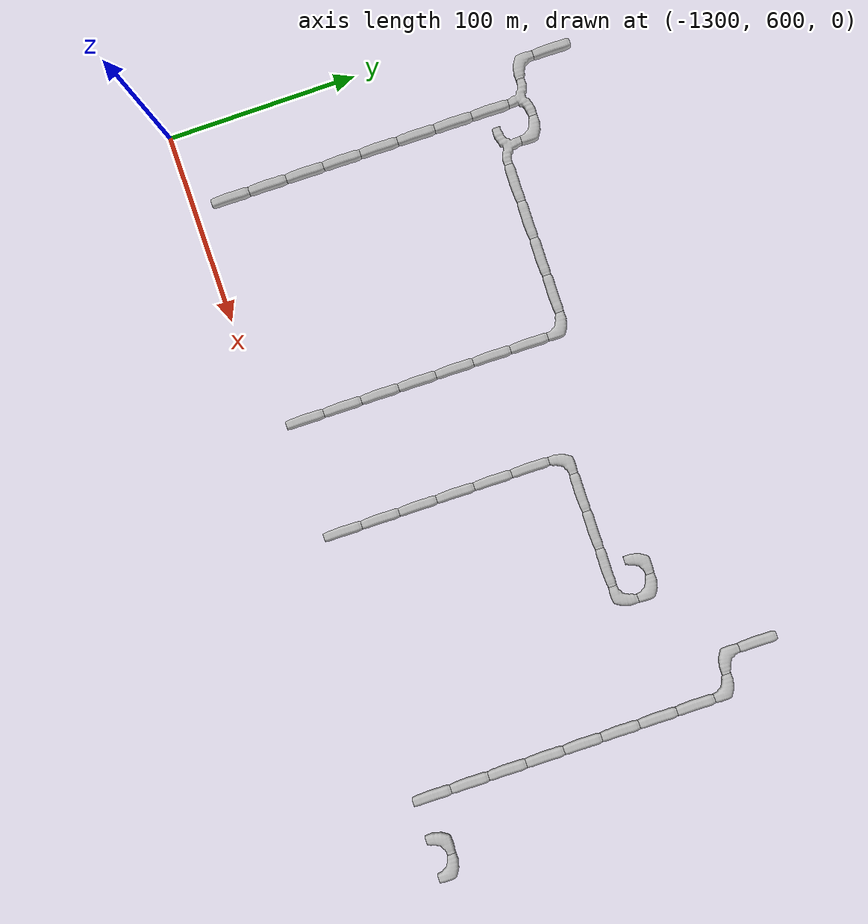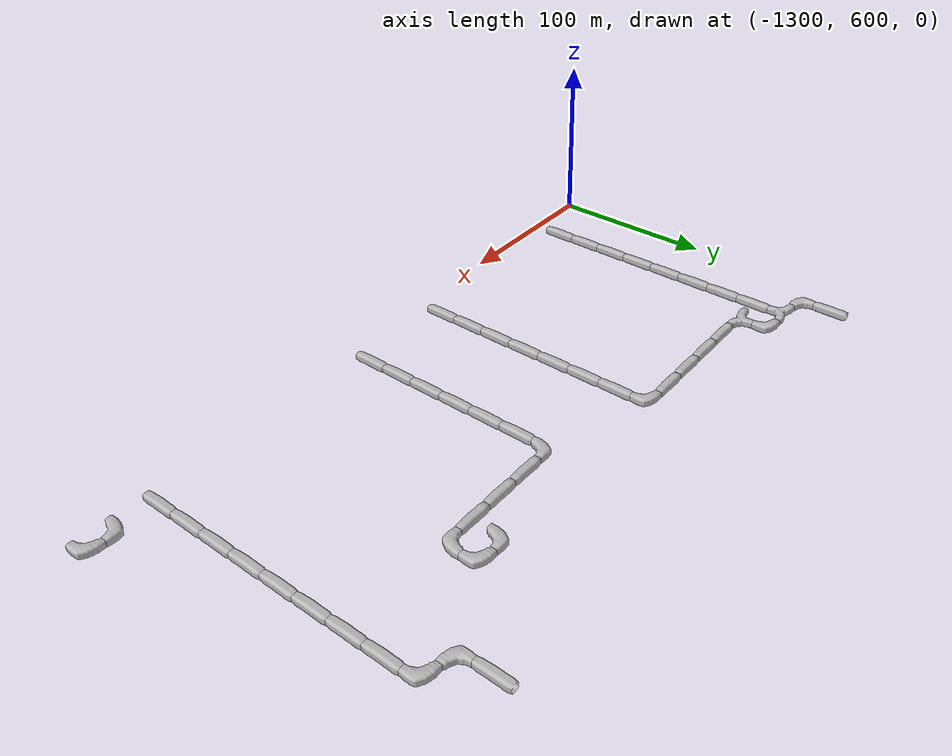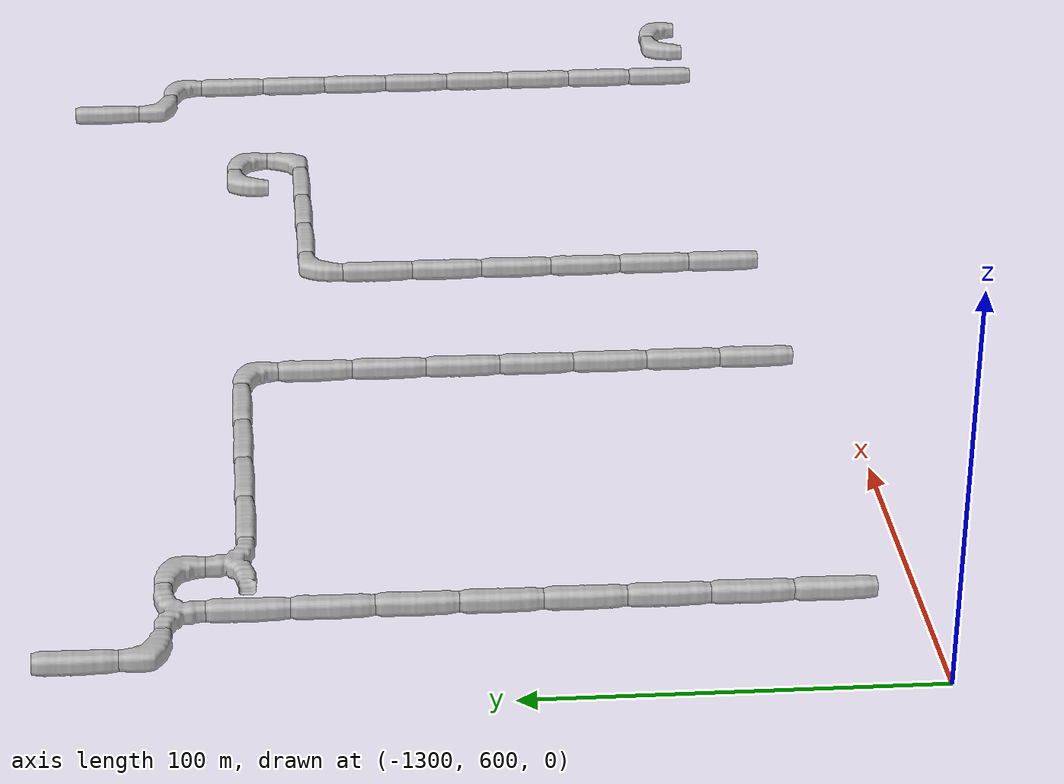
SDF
<sdf version="1.6">
 <world name="cave_16000_2">
  <include>
   <static>true</static>
   <name>cave_-47_31</name>
   <pose>-940 620 0 0 0 0.0</pose>
   <uri>model://cave_straight_20m</uri>
  </include>
  <include>
   <static>true</static>
   <name>cave_-47_32</name>
   <pose>-940 640 0 0 0 0.0</pose>
   <uri>model://cave_straight_20m</uri>
  </include>
  <include>
   <static>true</static>
   <name>cave_-47_33</name>
   <pose>-940 660 0 0 0 0.0</pose>
   <uri>model://cave_straight_20m</uri>
  </include>
  <include>
   <static>true</static>
   <name>cave_-47_34</name>
   <pose>-940 680 0 0 0 0.0</pose>
   <uri>model://cave_straight_20m</uri>
  </include>
  <include>
   <static>true</static>
   <name>cave_-47_35</name>
   <pose>-940 700 0 0 0 0.0</pose>
   <uri>model://cave_straight_20m</uri>
  </include>
  <include>
   <static>true</static>
   <name>cave_-47_36</name>
   <pose>-940 720 0 0 0 0.0</pose>
   <uri>model://cave_straight_20m</uri>
  </include>
  <include>
   <static>true</static>
   <name>cave_-47_37</name>
   <pose>-940 740 0 0 0 0.0</pose>
   <uri>model://cave_straight_20m</uri>
  </include>
  <include>
   <static>true</static>
   <name>cave_-47_38</name>
   <pose>-940 760 0 0 0 0.0</pose>
   <uri>model://cave_straight_20m</uri>
  </include>
  <include>
   <static>true</static>
   <name>cave_-47_39</name>
   <pose>-940 780 0 0 0 3.141592653589793</pose>
   <uri>model://cave_L_20m</uri>
  </include>
  <include>
   <static>true</static>
   <name>cave_-48_39</name>
   <pose>-960 780 0 0 0 0.0</pose>
   <uri>model://cave_L_20m</uri>
  </include>
  <include>
   <static>true</static>
   <name>cave_-48_40</name>
   <pose>-960 800 0 0 0 0.0</pose>
   <uri>model://cave_straight_20m</uri>
  </include>
  <include>
   <static>true</static>
   <name>cave_-45_31</name>
   <pose>-900 620 0 0 0 3.141592653589793</pose>
   <uri>model://cave_L_20m</uri>
  </include>
  <include>
   <static>true</static>
   <name>cave_-46_31</name>
   <pose>-920 620 0 0 0 -1.5707963267948966</pose>
   <uri>model://cave_L_20m</uri>
  </include>
  <include>
   <static>true</static>
   <name>cave_-63_31</name>
   <pose>-1260 620 0 0 0 0.0</pose>
   <uri>model://cave_straight_20m</uri>
  </include>
  <include>
   <static>true</static>
   <name>cave_-63_32</name>
   <pose>-1260 640 0 0 0 0.0</pose>
   <uri>model://cave_straight_20m</uri>
  </include>
  <include>
   <static>true</static>
   <name>cave_-63_33</name>
   <pose>-1260 660 0 0 0 0.0</pose>
   <uri>model://cave_straight_20m</uri>
  </include>
  <include>
   <static>true</static>
   <name>cave_-63_34</name>
   <pose>-1260 680 0 0 0 0.0</pose>
   <uri>model://cave_straight_20m</uri>
  </include>
  <include>
   <static>true</static>
   <name>cave_-63_35</name>
   <pose>-1260 700 0 0 0 0.0</pose>
   <uri>model://cave_straight_20m</uri>
  </include>
  <include>
   <static>true</static>
   <name>cave_-63_36</name>
   <pose>-1260 720 0 0 0 0.0</pose>
   <uri>model://cave_straight_20m</uri>
  </include>
  <include>
   <static>true</static>
   <name>cave_-63_37</name>
   <pose>-1260 740 0 0 0 0.0</pose>
   <uri>model://cave_straight_20m</uri>
  </include>
  <include>
   <static>true</static>
   <name>cave_-63_38</name>
   <pose>-1260 760 0 0 0 0.0</pose>
   <uri>model://cave_straight_20m</uri>
  </include>
  <include>
   <static>true</static>
   <name>cave_-63_39</name>
   <pose>-1260 780 0 0 0 3.141592653589793</pose>
   <uri>model://cave_3way_20m</uri>
  </include>
  <include>
   <static>true</static>
   <name>cave_-62_39</name>
   <pose>-1240 780 0 0 0 3.141592653589793</pose>
   <uri>model://cave_L_20m</uri>
  </include>
  <include>
   <static>true</static>
   <name>cave_-62_38</name>
   <pose>-1240 760 0 0 0 0.0</pose>
   <uri>model://cave_3way_20m</uri>
  </include>
  <include>
   <static>true</static>
   <name>cave_-61_38</name>
   <pose>-1220 760 0 0 0 1.5707963267948966</pose>
   <uri>model://cave_straight_20m</uri>
  </include>
  <include>
   <static>true</static>
   <name>cave_-60_38</name>
   <pose>-1200 760 0 0 0 1.5707963267948966</pose>
   <uri>model://cave_straight_20m</uri>
  </include>
  <include>
   <static>true</static>
   <name>cave_-59_38</name>
   <pose>-1180 760 0 0 0 1.5707963267948966</pose>
   <uri>model://cave_straight_20m</uri>
  </include>
  <include>
   <static>true</static>
   <name>cave_-58_38</name>
   <pose>-1160 760 0 0 0 1.5707963267948966</pose>
   <uri>model://cave_straight_20m</uri>
  </include>
  <include>
   <static>true</static>
   <name>cave_-57_38</name>
   <pose>-1140 760 0 0 0 3.141592653589793</pose>
   <uri>model://cave_L_20m</uri>
  </include>
  <include>
   <static>true</static>
   <name>cave_-57_37</name>
   <pose>-1140 740 0 0 0 0.0</pose>
   <uri>model://cave_straight_20m</uri>
  </include>
  <include>
   <static>true</static>
   <name>cave_-57_36</name>
   <pose>-1140 720 0 0 0 0.0</pose>
   <uri>model://cave_straight_20m</uri>
  </include>
  <include>
   <static>true</static>
   <name>cave_-57_35</name>
   <pose>-1140 700 0 0 0 0.0</pose>
   <uri>model://cave_straight_20m</uri>
  </include>
  <include>
   <static>true</static>
   <name>cave_-57_34</name>
   <pose>-1140 680 0 0 0 0.0</pose>
   <uri>model://cave_straight_20m</uri>
  </include>
  <include>
   <static>true</static>
   <name>cave_-57_33</name>
   <pose>-1140 660 0 0 0 0.0</pose>
   <uri>model://cave_straight_20m</uri>
  </include>
  <include>
   <static>true</static>
   <name>cave_-57_32</name>
   <pose>-1140 640 0 0 0 0.0</pose>
   <uri>model://cave_straight_20m</uri>
  </include>
  <include>
   <static>true</static>
   <name>cave_-57_31</name>
   <pose>-1140 620 0 0 0 0.0</pose>
   <uri>model://cave_straight_20m</uri>
  </include>
  <include>
   <static>true</static>
   <name>cave_-64_39</name>
   <pose>-1280 780 0 0 0 0.0</pose>
   <uri>model://cave_L_20m</uri>
  </include>
  <include>
   <static>true</static>
   <name>cave_-64_40</name>
   <pose>-1280 800 0 0 0 0.0</pose>
   <uri>model://cave_straight_20m</uri>
  </include>
  <include>
   <static>true</static>
   <name>cave_-54_31</name>
   <pose>-1080 620 0 0 0 0.0</pose>
   <uri>model://cave_straight_20m</uri>
  </include>
  <include>
   <static>true</static>
   <name>cave_-54_32</name>
   <pose>-1080 640 0 0 0 0.0</pose>
   <uri>model://cave_straight_20m</uri>
  </include>
  <include>
   <static>true</static>
   <name>cave_-54_33</name>
   <pose>-1080 660 0 0 0 0.0</pose>
   <uri>model://cave_straight_20m</uri>
  </include>
  <include>
   <static>true</static>
   <name>cave_-54_34</name>
   <pose>-1080 680 0 0 0 0.0</pose>
   <uri>model://cave_straight_20m</uri>
  </include>
  <include>
   <static>true</static>
   <name>cave_-54_35</name>
   <pose>-1080 700 0 0 0 0.0</pose>
   <uri>model://cave_straight_20m</uri>
  </include>
  <include>
   <static>true</static>
   <name>cave_-54_36</name>
   <pose>-1080 720 0 0 0 0.0</pose>
   <uri>model://cave_straight_20m</uri>
  </include>
  <include>
   <static>true</static>
   <name>cave_-54_37</name>
   <pose>-1080 740 0 0 0 -1.5707963267948966</pose>
   <uri>model://cave_L_20m</uri>
  </include>
  <include>
   <static>true</static>
   <name>cave_-53_37</name>
   <pose>-1060 740 0 0 0 1.5707963267948966</pose>
   <uri>model://cave_straight_20m</uri>
  </include>
  <include>
   <static>true</static>
   <name>cave_-52_37</name>
   <pose>-1040 740 0 0 0 1.5707963267948966</pose>
   <uri>model://cave_straight_20m</uri>
  </include>
  <include>
   <static>true</static>
   <name>cave_-51_37</name>
   <pose>-1020 740 0 0 0 1.5707963267948966</pose>
   <uri>model://cave_straight_20m</uri>
  </include>
  <include>
   <static>true</static>
   <name>cave_-50_37</name>
   <pose>-1000 740 0 0 0 1.5707963267948966</pose>
   <uri>model://cave_L_20m</uri>
  </include>
  <include>
   <static>true</static>
   <name>cave_-50_38</name>
   <pose>-1000 760 0 0 0 3.141592653589793</pose>
   <uri>model://cave_L_20m</uri>
  </include>
  <include>
   <static>true</static>
   <name>cave_-51_38</name>
   <pose>-1020 760 0 0 0 -1.5707963267948966</pose>
   <uri>model://cave_L_20m</uri>
  </include>
 </world>
</sdf>
